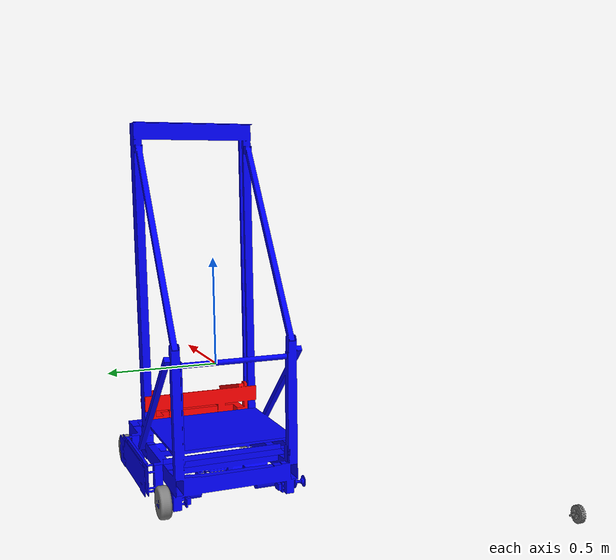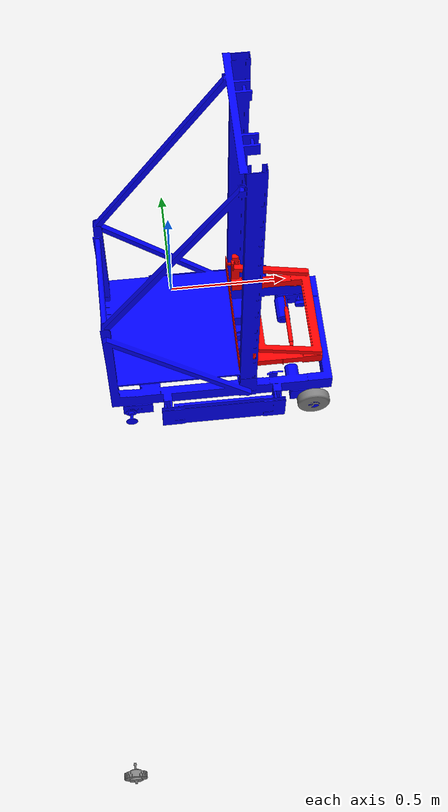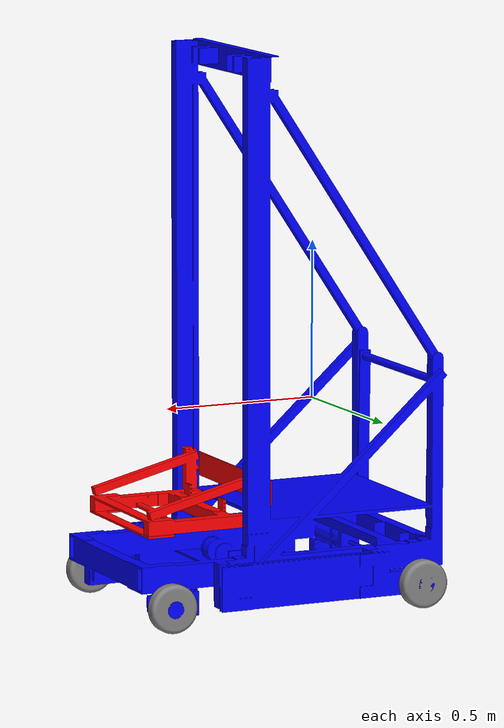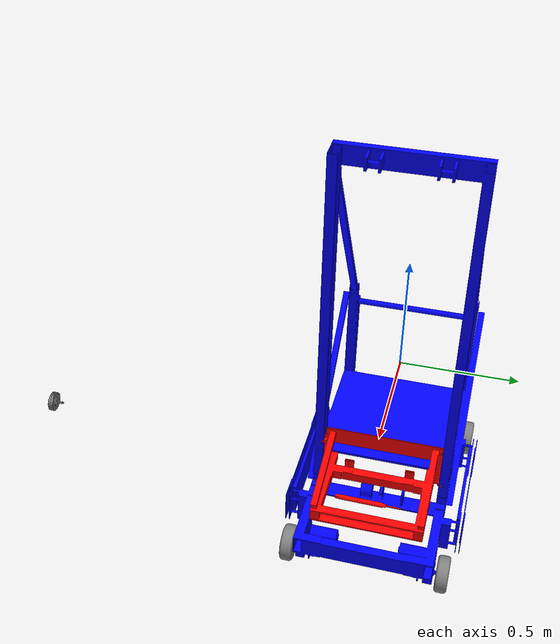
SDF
<?xml version="1.0" encoding="utf-8"?>
<sdf version="1.5">
  <model name="DiscusBot">
    <pose>0 0 -0.31496 0 0 0</pose>
    <plugin name="clock" filename="libclock.so">
      <topic>/gazebo/frc/time</topic>
    </plugin>
    <link name="Chassis">
      <gravity>1</gravity>
      <self_collide>0</self_collide>
      <pose>0.117716507183126 -0.00262361448485526 0.0357722103187504 1.5707963267949 -1.04083408558608E-16 3.14159265358977</pose>
      <must_be_base_link>1</must_be_base_link>
      <velocity_decay>
        <linear>0</linear>
        <angular>0</angular>
      </velocity_decay>
      <inertial>
        <mass>58.5681038862846</mass>
        <pose>0 0 0 0 0 0</pose>
        <inertia>
          <ixx>12.6956735405121</ixx>
          <ixy>0.246243840361059</ixy>
          <ixz>0.0388596439484185</ixz>
          <iyy>9.15796969952799</iyy>
          <iyz>0.0529898457817828</iyz>
          <izz>15.1040564499364</izz>
        </inertia>
      </inertial>
      <collision name="Chassis_collision">
        <pose>-0.439164785961926 -0.621188698797679 -1.27685929614077 0 0 0</pose>
        <geometry>
          <mesh>
            <scale>1 1 1</scale>
            <uri>model://DiscusBot/meshes/Chassis_col.STL</uri>
          </mesh>
        </geometry>
        <surface>
          <contact>
            <ode />
          </contact>
          <friction>
            <ode>
              <mu>0</mu>
              <mu2>0</mu2>
            </ode>
          </friction>
        </surface>
      </collision>
      <visual name="Chassis_visual">
        <pose>-0.439164785961926 -0.621188698797679 -1.27685929614077 0 0 0</pose>
        <material>
          <ambient>0 0 1 1</ambient>
          <diffuse>0 0 1 1</diffuse>
        </material>
        <geometry>
          <mesh>
            <scale>1 1 1</scale>
            <uri>model://DiscusBot/meshes/Chassis.STL</uri>
          </mesh>
        </geometry>
      </visual>
    </link>
    <link name="Lifter">
      <gravity>1</gravity>
      <self_collide>0</self_collide>
      <pose>0.444511959067907 -0.00303385972048886 0.0147079748282497 1.5707963267949 -1.04083408558608E-16 3.14159265358977</pose>
      <must_be_base_link>0</must_be_base_link>
      <velocity_decay>
        <linear>1</linear>
        <angular>0</angular>
      </velocity_decay>
      <inertial>
        <mass>0.02</mass>
        <pose>0 0 0 0 0 0</pose>
        <inertia>
          <ixx>0.0139000286494454</ixx>
          <ixy>0.000650386261384081</ixy>
          <ixz>0.0000207534456135275</ixz>
          <iyy>0.0180813239992861</iyy>
          <iyz>0.0000124502189574139</iyz>
          <izz>0.00557924343085255</izz>
        </inertia>
      </inertial>
      <collision name="Lifter_collision">
        <pose>-0.112369334077145 -0.600124463307179 -1.27644905090515 0 0 0</pose>
        <geometry>
          <mesh>
            <scale>1 1 1</scale>
            <uri>model://DiscusBot/meshes/Lifter_col.STL</uri>
          </mesh>
        </geometry>
        <surface>
          <contact>
            <ode />
          </contact>
          <friction>
            <ode>
              <mu>1</mu>
              <mu2>1</mu2>
            </ode>
          </friction>
        </surface>
      </collision>
      <visual name="Lifter_visual">
        <pose>-0.112369334077145 -0.600124463307179 -1.27644905090515 0 0 0</pose>
        <material>
          <ambient>1 0 0 1</ambient>
          <diffuse>1 0 0 1</diffuse>
        </material>
        <geometry>
          <mesh>
            <scale>1 1 1</scale>
            <uri>model://DiscusBot/meshes/Lifter.STL</uri>
          </mesh>
        </geometry>
      </visual>
    </link>
    <joint name="Chassis-Lifter" type="prismatic">
      <parent>Chassis</parent>
      <child>Lifter</child>
      <pose>0.146061959067922 0.3 -0.244616140279528 0 0 1.5707963267949</pose>
      <axis>
        <xyz>1 0 0</xyz>
        <dynamics>
          <damping>0.5</damping>
          <friction>0.5</friction>
        </dynamics>
        <limit>
          <upper>1.5</upper>
          <lower>0</lower>
          <effort>100</effort>
        </limit>
      </axis>
    </joint>
    <link name="LFWheel">
      <gravity>1</gravity>
      <self_collide>0</self_collide>
      <pose>0.62499240000001 0.32263333999998 -0.241217118490747 1.5707963267949 -1.04083408558608E-16 3.14159265358977</pose>
      <must_be_base_link>0</must_be_base_link>
      <velocity_decay>
        <linear>0</linear>
        <angular>0</angular>
      </velocity_decay>
      <inertial>
        <mass>0.894756464119298</mass>
        <pose>0 0 0 0 0 0</pose>
        <inertia>
          <ixx>0.00144193695353773</ixx>
          <ixy>3.42578484569923E-50</ixy>
          <ixz>6.12234207152071E-35</ixz>
          <iyy>0.00144193695353773</iyy>
          <iyz>2.00576852536002E-36</iyz>
          <izz>0.00251803446769832</izz>
        </inertia>
      </inertial>
      <collision name="LFWheel_collision">
        <pose>0.0681111068549508 -0.344199369988182 -1.60211625062562 0 0 0</pose>
        <geometry>
          <mesh>
            <scale>1 1 1</scale>
            <uri>model://DiscusBot/meshes/LFWheel_col.STL</uri>
          </mesh>
        </geometry>
        <surface>
          <contact>
            <ode />
          </contact>
          <friction>
            <ode>
              <mu>1</mu>
              <mu2>1</mu2>
            </ode>
          </friction>
        </surface>
      </collision>
      <visual name="LFWheel_visual">
        <pose>0.0681111068549508 -0.344199369988182 -1.60211625062562 0 0 0</pose>
        <material>
          <ambient>0.501960784313725 0.501960784313725 0.501960784313725 1</ambient>
          <diffuse>0.501960784313725 0.501960784313725 0.501960784313725 1</diffuse>
        </material>
        <geometry>
          <mesh>
            <scale>1 1 1</scale>
            <uri>model://DiscusBot/meshes/LFWheel.STL</uri>
          </mesh>
        </geometry>
      </visual>
    </link>
    <joint name="Chassis-LFWheel" type="revolute">
      <parent>Chassis</parent>
      <child>LFWheel</child>
      <pose>0 0 0 0 4.71238899528585 0</pose>
      <axis>
        <xyz>1 0 1.49011610828254E-08</xyz>
        <dynamics>
          <damping>0.2</damping>
          <friction>0</friction>
        </dynamics>
        <limit>
          <effort>30</effort>
        </limit>
      </axis>
    </joint>
    <link name="RFWheel">
      <gravity>1</gravity>
      <self_collide>0</self_collide>
      <pose>0.624992400000001 -0.32263334000002 -0.241217118490748 1.5707963267949 -1.04083408558608E-16 3.14159265358977</pose>
      <must_be_base_link>0</must_be_base_link>
      <velocity_decay>
        <linear>0</linear>
        <angular>0</angular>
      </velocity_decay>
      <inertial>
        <mass>0.894756464119297</mass>
        <pose>0 0 0 0 0 0</pose>
        <inertia>
          <ixx>0.00144193695353772</ixx>
          <ixy>2.61012178719941E-50</ixy>
          <ixz>7.06558323867667E-35</ixz>
          <iyy>0.00144193695353772</iyy>
          <iyz>2.00576852536002E-36</iyz>
          <izz>0.00251803446769832</izz>
        </inertia>
      </inertial>
      <collision name="RFWheel_collision">
        <pose>0.0681111068549563 -0.344199369988181 -0.956849570625618 0 0 0</pose>
        <geometry>
          <mesh>
            <scale>1 1 1</scale>
            <uri>model://DiscusBot/meshes/RFWheel_col.STL</uri>
          </mesh>
        </geometry>
        <surface>
          <contact>
            <ode />
          </contact>
          <friction>
            <ode>
              <mu>1</mu>
              <mu2>1</mu2>
            </ode>
          </friction>
        </surface>
      </collision>
      <visual name="RFWheel_visual">
        <pose>0.0681111068549563 -0.344199369988181 -0.956849570625618 0 0 0</pose>
        <material>
          <ambient>0.501960784313725 0.501960784313725 0.501960784313725 1</ambient>
          <diffuse>0.501960784313725 0.501960784313725 0.501960784313725 1</diffuse>
        </material>
        <geometry>
          <mesh>
            <scale>1 1 1</scale>
            <uri>model://DiscusBot/meshes/RFWheel.STL</uri>
          </mesh>
        </geometry>
      </visual>
    </link>
    <joint name="Chassis-RFWheel" type="revolute">
      <parent>Chassis</parent>
      <child>RFWheel</child>
      <pose>0 0 0 0 4.71238898038469 0</pose>
      <axis>
        <xyz>1 0 -2.22044604925031E-16</xyz>
        <dynamics>
          <damping>0.2</damping>
          <friction>0</friction>
        </dynamics>
        <limit>
          <effort>30</effort>
        </limit>
      </axis>
    </joint>
    <link name="LRWheel">
      <gravity>1</gravity>
      <self_collide>0</self_collide>
      <pose>-0.231292399999987 0.322633340000001 -0.241217118490745 1.5707963267949 -1.04083408558608E-16 3.14159265358977</pose>
      <must_be_base_link>0</must_be_base_link>
      <velocity_decay>
        <linear>0</linear>
        <angular>0</angular>
      </velocity_decay>
      <inertial>
        <mass>0.894756464119298</mass>
        <pose>0 0 0 0 0 0</pose>
        <inertia>
          <ixx>0.00144193695353773</ixx>
          <ixy>2.28385656379948E-50</ixy>
          <ixz>6.71008924693186E-35</ixz>
          <iyy>0.00144193695353773</iyy>
          <iyz>2.00576852536002E-36</iyz>
          <izz>0.00251803446769832</izz>
        </inertia>
      </inertial>
      <collision name="LRWheel_collision">
        <pose>-0.788173693145047 -0.344199369988184 -1.60211625062562 0 0 0</pose>
        <geometry>
          <mesh>
            <scale>1 1 1</scale>
            <uri>model://DiscusBot/meshes/LRWheel_col.STL</uri>
          </mesh>
        </geometry>
        <surface>
          <contact>
            <ode />
          </contact>
          <friction>
            <ode>
              <mu>1</mu>
              <mu2>1</mu2>
            </ode>
          </friction>
        </surface>
      </collision>
      <visual name="LRWheel_visual">
        <pose>-0.788173693145047 -0.344199369988184 -1.60211625062562 0 0 0</pose>
        <material>
          <ambient>0.501960784313725 0.501960784313725 0.501960784313725 1</ambient>
          <diffuse>0.501960784313725 0.501960784313725 0.501960784313725 1</diffuse>
        </material>
        <geometry>
          <mesh>
            <scale>1 1 1</scale>
            <uri>model://DiscusBot/meshes/LRWheel.STL</uri>
          </mesh>
        </geometry>
      </visual>
    </link>
    <joint name="Chassis-LRWheel" type="revolute">
      <parent>Chassis</parent>
      <child>LRWheel</child>
      <pose>-1.11022302462516E-16 -5.55111512312578E-17 -2.22044604925031E-16 0 4.71238898038469 0</pose>
      <axis>
        <xyz>1 0 -2.22044604925031E-16</xyz>
        <dynamics>
          <damping>0.2</damping>
          <friction>0</friction>
        </dynamics>
        <limit>
          <effort>30</effort>
        </limit>
      </axis>
    </joint>
    <link name="RRWheel">
      <gravity>1</gravity>
      <self_collide>0</self_collide>
      <pose>-0.231292400000005 -0.322633340000002 -0.241217118490748 1.5707963267949 -1.04083408558608E-16 3.14159265358977</pose>
      <must_be_base_link>0</must_be_base_link>
      <velocity_decay>
        <linear>0</linear>
        <angular>0</angular>
      </velocity_decay>
      <inertial>
        <mass>0.894756464119297</mass>
        <pose>0 0 0 0 0 0</pose>
        <inertia>
          <ixx>0.00144193695353772</ixx>
          <ixy>2.61012178719941E-50</ixy>
          <ixz>7.06558323867667E-35</ixz>
          <iyy>0.00144193695353772</iyy>
          <iyz>2.00576852536002E-36</iyz>
          <izz>0.00251803446769832</izz>
        </inertia>
      </inertial>
      <collision name="RRWheel_collision">
        <pose>-0.788173693145049 -0.344199369988181 -0.956849570625617 0 0 0</pose>
        <geometry>
          <mesh>
            <scale>1 1 1</scale>
            <uri>model://DiscusBot/meshes/RRWheel_col.STL</uri>
          </mesh>
        </geometry>
        <surface>
          <contact>
            <ode />
          </contact>
          <friction>
            <ode>
              <mu>1</mu>
              <mu2>1</mu2>
            </ode>
          </friction>
        </surface>
      </collision>
      <visual name="RRWheel_visual">
        <pose>-0.788173693145049 -0.344199369988181 -0.956849570625617 0 0 0</pose>
        <material>
          <ambient>0.501960784313725 0.501960784313725 0.501960784313725 1</ambient>
          <diffuse>0.501960784313725 0.501960784313725 0.501960784313725 1</diffuse>
        </material>
        <geometry>
          <mesh>
            <scale>1 1 1</scale>
            <uri>model://DiscusBot/meshes/RRWheel.STL</uri>
          </mesh>
        </geometry>
      </visual>
    </link>
    <joint name="Chassis-RRWheel" type="revolute">
      <parent>Chassis</parent>
      <child>RRWheel</child>
      <pose>1.11022302462516E-16 0 0 0 4.71238898038469 0</pose>
      <axis>
        <xyz>1 0 -2.22044604925031E-16</xyz>
        <dynamics>
          <damping>0.2</damping>
          <friction>0</friction>
        </dynamics>
        <limit>
          <effort>30</effort>
        </limit>
      </axis>
    </joint>
    <plugin name="Chassis_gyro" filename="libgyro.so">
      <link>Chassis</link>
      <topic>/gazebo/frc/simulator/analog/3</topic>
      <units>degrees</units>
      <axis>yaw</axis>
    </plugin>
    <plugin name="Chassis-Lifter_motor" filename="libdc_motor.so">
      <joint>Chassis-Lifter</joint>
      <topic>/gazebo/frc/simulator/pwm/5</topic>
      <multiplier>10</multiplier>
    </plugin>
    <plugin name="Chassis-Lifter_encoder" filename="libencoder.so">
      <joint>Chassis-Lifter</joint>
      <topic>/gazebo/frc/simulator/dio/9/10</topic>
      <units>degrees</units>
    </plugin>
    <plugin name="Chassis-Lifter_intlimit" filename="liblimit_switch.so">
      <joint>Chassis-Lifter</joint>
      <topic>/gazebo/frc/simulator/dio/10</topic>
      <type>internal</type>
      <units>degrees</units>
      <min>1.1</min>
      <max>1.2</max>
    </plugin>
    <plugin name="Chassis-Lifter_intlimit" filename="liblimit_switch.so">
      <joint>Chassis-Lifter</joint>
      <topic>/gazebo/frc/simulator/dio/9</topic>
      <type>internal</type>
      <units>degrees</units>
      <min>0.0</min>
      <max>0.05</max>
    </plugin>

    <plugin name="Chassis-LFWheel_motor" filename="libdc_motor.so">
      <joint>Chassis-LFWheel</joint>
      <topic>/gazebo/frc/simulator/pwm/1</topic>
      <multiplier>20</multiplier>
    </plugin>
    <plugin name="Chassis-LFWheel_encoder" filename="libencoder.so">
      <joint>Chassis-LFWheel</joint>
      <topic>/gazebo/frc/simulator/dio/1/2</topic>
      <units>degrees</units>
    </plugin>
    <plugin name="Chassis-RFWheel_motor" filename="libdc_motor.so">
      <joint>Chassis-RFWheel</joint>
      <topic>/gazebo/frc/simulator/pwm/2</topic>
      <multiplier>20</multiplier>
    </plugin>
    <plugin name="Chassis-RFWheel_encoder" filename="libencoder.so">
      <joint>Chassis-RFWheel</joint>
      <topic>/gazebo/frc/simulator/dio/3/4</topic>
      <units>degrees</units>
    </plugin>
    <plugin name="Chassis-LRWheel_motor" filename="libdc_motor.so">
      <joint>Chassis-LRWheel</joint>
      <topic>/gazebo/frc/simulator/pwm/3</topic>
      <multiplier>20</multiplier>
    </plugin>
    <plugin name="Chassis-LRWheel_encoder" filename="libencoder.so">
      <joint>Chassis-LRWheel</joint>
      <topic>/gazebo/frc/simulator/dio/5/6</topic>
      <units>degrees</units>
    </plugin>
    <plugin name="Chassis-RRWheel_motor" filename="libdc_motor.so">
      <joint>Chassis-RRWheel</joint>
      <topic>/gazebo/frc/simulator/pwm/4</topic>
      <multiplier>20</multiplier>
    </plugin>
    <plugin name="Chassis-RRWheel_encoder" filename="libencoder.so">
      <joint>Chassis-RRWheel</joint>
      <topic>/gazebo/frc/simulator/dio/7/8</topic>
      <units>degrees</units>
    </plugin>
  </model>
</sdf>
